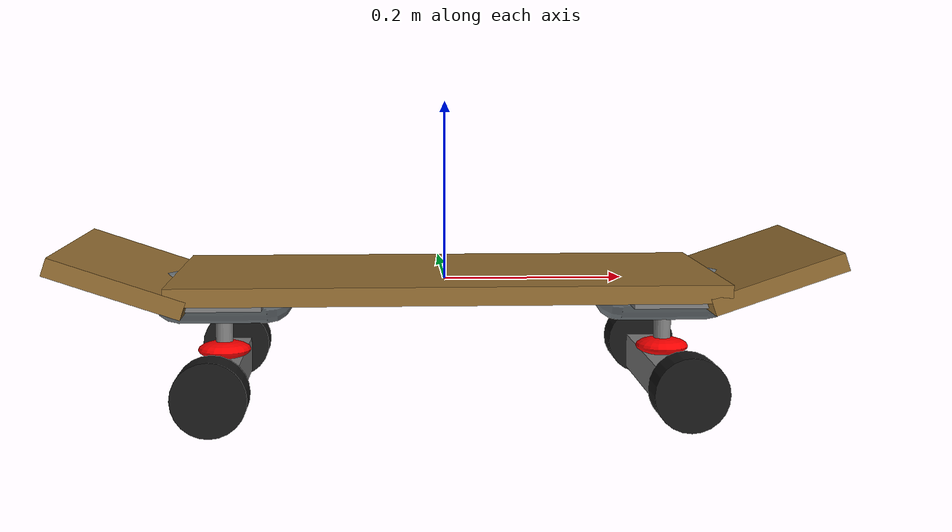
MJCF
<mujoco model="skateboard">
  <default>
    <default class="skateboard">
      <default class="truck">
        <geom type="capsule" size="0.03" rgba="0.4414 0.4727 0.4922 1"/>
      </default>
      <default class="hanger">
        <!-- TODO(hartikainen): need to fix the orientation for the bodies previously -->
        <!-- welded by these fixed joints. -->
        <geom type="capsule" fromto="0.0 0.1 -0.05 0.0 -0.1 -0.05" size="0.015" rgba="0.4414 0.4727 0.4922 1"/>
      </default>
      <default class="wheel">
        <!-- TODO(hartikainen): need to fix the orientation for the bodies previously -->
        <!-- welded by these fixed joints. -->
        <geom type="sphere" size="0.03" rgba="0.8867 0.2383 0.5781 1"/>
      </default>
      <default class="board-base-ball">
        <default class="board-slider">
          <joint type="slide" limited="false" stiffness="0" damping="1" frictionloss="0" armature="0"/>
          <motor ctrllimited="true" ctrlrange="-1 1" gear="100" />
        </default>
        <default class="board-ball">
          <joint type="ball" limited="false" damping="3"/>
        </default>
      </default>
    </default>

  </default>

  <worldbody>

    <body name="skateboard" pos="0 0 0">
      <joint name="board-x" axis="1 0 0" class="board-slider"/>
      <joint name="board-y" axis="0 1 0" class="board-slider"/>
      <joint name="board-z" axis="0 0 1" class="board-slider"/>
      <joint name="board-ball" class="board-ball"/>

      <!-- board -->
      <body name="board">
        <body name="board_center">
          <geom name="board-base" type="box" size="0.3 0.13 0.01" rgba="0.5859 0.4336 0.1992 1"/>
        </body>
        <geom name="board-nose" type="box" size="0.075 0.13 0.01" pos="0.35 0.0 0.01" quat="-0.9659 0 0.1588 0" rgba="0.5859 0.4336 0.1992 1"/>
        <geom name="board-tail" type="box" size="0.075 0.13 0.01" pos="-0.35 0.0 0.01" quat="0.9659 0 0.1588 0" rgba="0.5859 0.4336 0.1992 1"/>
      </body>
      <!-- trucks -->
      <geom name="truck-nose" class="truck" fromto="0.20 0.0 -0.020 0.30 0.0 -0.020"/>
      <geom name="truck-tail" class="truck" fromto="-0.20 0.0 -0.020 -0.30 0.0 -0.020"/>

       <!-- Baseplate -->
      <body name="baseplate-front" pos="0.25 0.0 -0.01">
        <geom type="box" size="0.05 0.1 0.01" rgba="0.5 0.5 0.5 1"/>
        <body name="kingpin-front" pos="0 0 -0.01">
          <geom type="capsule" fromto="0 0 0 0 0 -0.05" size="0.01" rgba="0.5 0.5 0.5 1"/>

          <!-- Bushings and hanger -->
          <body name="bushings-and-hanger-front" pos="0 0 -0.06">
            <geom name="bottom-bushing-front" type="ellipsoid" size="0.03 0.03 0.01" rgba="1 0 0 1"/>
            <geom name="hanger-front" type="box" size="0.02 0.12 0.02" pos="0 0 -0.03" rgba="0.5 0.5 0.5 1"/>

            <!-- Wheels -->
            <body name="wheel-front-left" pos="0.0 0.15 -0.02">
              <joint name="wheel-front-left" type="hinge" axis="0 1 0"/>
              <geom type="cylinder" size="0.04 0.02" rgba="0.1 0.1 0.1 1" quat="0.707 0.707 0 0"/>
            </body>
            <body name="wheel-front-right" pos="0.0 -0.15 -0.02">
              <joint name="wheel-front-right" type="hinge" axis="0 1 0"/>
              <geom type="cylinder" size="0.04 0.02" rgba="0.1 0.1 0.1 1" quat="0.707 0.707 0 0"/>
            </body>

            <!-- Hinge joint that allows the hanger to rotate -->
          </body>
        </body>
      </body>
      <!-- identical but for back truck -->
      <body name="baseplate-back" pos="-0.25 0.0 -0.01">
        <geom type="box" size="0.05 0.1 0.01" rgba="0.5 0.5 0.5 1"/>
        <body name="kingpin-back" pos="0 0 -0.01">
          <geom type="capsule" fromto="0 0 0 0 0 -0.05" size="0.01" rgba="0.5 0.5 0.5 1"/>

          <!-- Bushings and hanger -->
          <body name="bushings-and-hanger-back" pos="0 0 -0.06">
            <geom name="bottom-bushing-back" type="ellipsoid" size="0.03 0.03 0.01" rgba="1 0 0 1"/>
            <geom name="hanger-back" type="box" size="0.02 0.12 0.02" pos="0 0 -0.03" rgba="0.5 0.5 0.5 1"/>

            <!-- Wheels -->
            <body name="wheel-back-left" pos="0.0 0.15 -0.02">
              <joint name="wheel-back-left" type="hinge" axis="0 1 0"/>
              <geom type="cylinder" size="0.04 0.02" rgba="0.1 0.1 0.1 1" quat="0.707 0.707 0 0"/>
            </body>
            <body name="wheel-back-right" pos="0.0 -0.15 -0.02">
              <joint name="wheel-back-right" type="hinge" axis="0 1 0"/>
              <geom type="cylinder" size="0.04 0.02" rgba="0.1 0.1 0.1 1" quat="0.707 0.707 0 0"/>
            </body>

            <!-- Hinge joint that allows the hanger to rotate -->
            <!-- TODO(elias): need to update losses of numbered joints in order to work -->
          </body>
        </body>
      </body>
      <!-- exlude contact between all board parts,   trucks and kingpins and hangars -->

    </body>
  </worldbody>
  <actuator>
    <!-- Control the x-translation of the cube. We leave the
         yz-axes unactuated. This acts as a throttle -->
    <motor name="throttle-actuator" joint="board-x" class="board-slider" />
  </actuator>
  <contact>
        <exclude body1="board" body2="baseplate-front"/>
        <exclude body1="board" body2="baseplate-back"/>
        <exclude body1="board" body2="wheel-front-left"/>
        <exclude body1="board" body2="wheel-front-right"/>
        <exclude body1="board" body2="wheel-back-left"/>
        <exclude body1="board" body2="wheel-back-right"/>
        <exclude body1="baseplate-front" body2="wheel-front-left"/>
        <exclude body1="baseplate-front" body2="wheel-front-right"/>
        <exclude body1="baseplate-front" body2="wheel-back-left"/>
        <exclude body1="baseplate-front" body2="wheel-back-right"/>
        <exclude body1="baseplate-back" body2="wheel-front-left"/>
        <exclude body1="baseplate-back" body2="wheel-front-right"/>
        <exclude body1="baseplate-back" body2="wheel-back-left"/>
        <exclude body1="baseplate-back" body2="wheel-back-right"/>
        <exclude body1="wheel-front-left" body2="wheel-front-right"/>
        <exclude body1="wheel-front-left" body2="wheel-back-left"/>
        <exclude body1="wheel-front-left" body2="wheel-back-right"/>
        <exclude body1="wheel-front-right" body2="wheel-back-left"/>
        <exclude body1="wheel-front-right" body2="wheel-back-right"/>
        <exclude body1="wheel-back-left" body2="wheel-back-right"/>
        <exclude body1="baseplate-front" body2="baseplate-back"/>
        <exclude body1="baseplate-front" body2="kingpin-front"/>
        <exclude body1="baseplate-front" body2="kingpin-back"/>
        <exclude body1="baseplate-front" body2="bushings-and-hanger-front"/>
        <exclude body1="baseplate-front" body2="bushings-and-hanger-back"/>
        <exclude body1="baseplate-back" body2="kingpin-front"/>
        <exclude body1="baseplate-back" body2="kingpin-back"/>
        <exclude body1="baseplate-back" body2="bushings-and-hanger-front"/>
        <exclude body1="baseplate-back" body2="bushings-and-hanger-back"/>
        <exclude body1="kingpin-front" body2="kingpin-back"/>
        <exclude body1="kingpin-front" body2="bushings-and-hanger-front"/>
        <exclude body1="kingpin-front" body2="bushings-and-hanger-back"/>
        <exclude body1="kingpin-back" body2="bushings-and-hanger-front"/>
        <exclude body1="kingpin-back" body2="bushings-and-hanger-back"/>
        <exclude body1="bushings-and-hanger-front" body2="bushings-and-hanger-back"/>
      </contact>
</mujoco>
